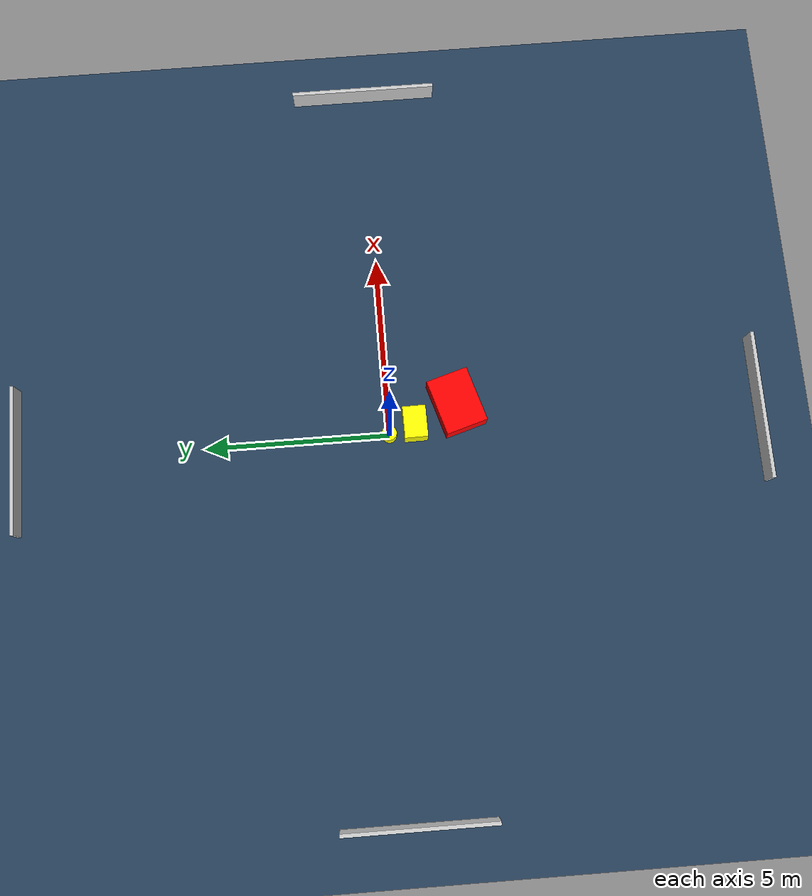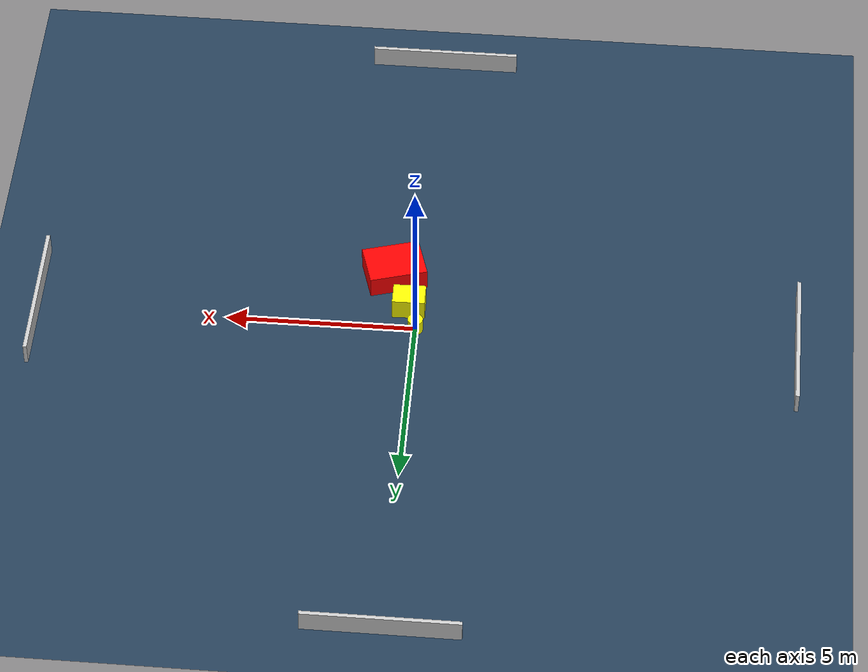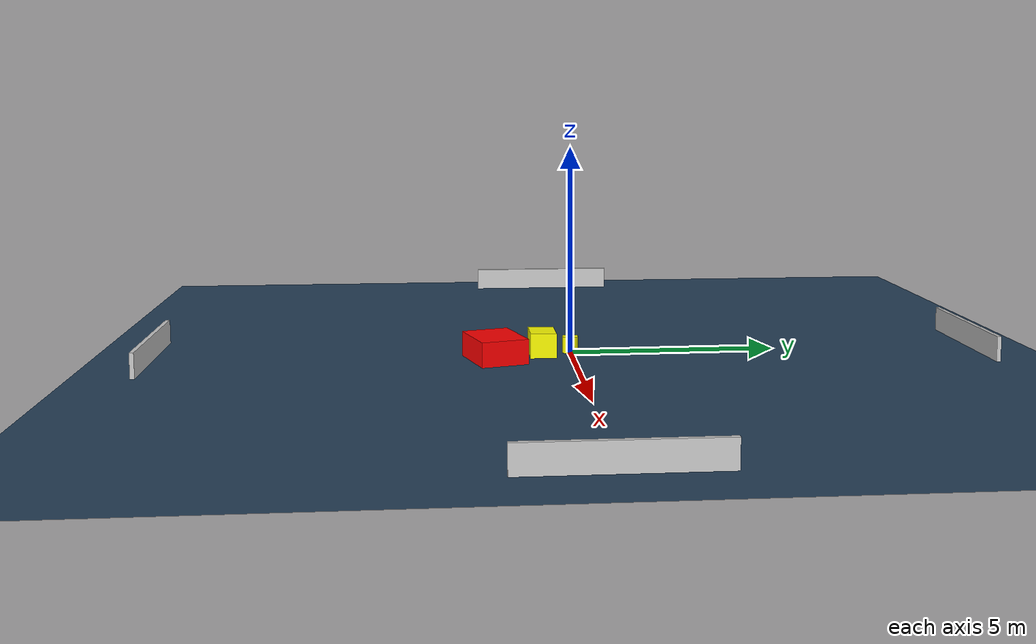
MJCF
<?xml version="1.0" ?>
<mujoco model="generated_environment">
  <option timestep="0.01" integrator="RK4" cone="elliptic"/>
  <default>
    <geom density="1"/>
  </default>
  <asset>
    <texture builtin="gradient" height="3072" name="skybox" rgb1="0.3 0.5 0.7" rgb2="0 0 0" type="skybox" width="512"/>
    <texture builtin="checker" height="300" name="groundplane" rgb1="0.2 0.3 0.4" rgb2="0.1 0.2 0.3" type="2d" width="300"/>
    <material name="groundplane" reflectance="0.2" texrepeat="5 5" texture="groundplane"/>
  </asset>
  <worldbody>
    <light dir="0 0 -1" directional="true" pos="0 0 1.5"/>
    <geom condim="3" friction="0.5 0.005 0.001" material="groundplane" name="floor" pos="0 0 0" size="0 0 0.05" type="plane"/>
    <body name="walls">
      <geom name="wall_1" condim="4" pos="-10.0 0.0 0.3" rgba="0.800000011920929 0.800000011920929 0.800000011920929 1.0" size="0.05 2.0 0.3" type="box"/>
      <geom name="wall_2" condim="4" pos="10.0 0.0 0.3" rgba="0.800000011920929 0.800000011920929 0.800000011920929 1.0" size="0.05 2.0 0.3" type="box"/>
      <geom name="wall_3" condim="4" pos="0.0 -10.0 0.3" rgba="0.800000011920929 0.800000011920929 0.800000011920929 1.0" size="2.0 0.05 0.3" type="box"/>
      <geom name="wall_4" condim="4" pos="0.0 10.0 0.3" rgba="0.800000011920929 0.800000011920929 0.800000011920929 1.0" size="2.0 0.05 0.3" type="box"/>
    </body>
    <body name="robot">
      <joint name="joint_x" type="slide" pos="0 0 0" axis="1 0 0"/>
      <joint name="joint_y" type="slide" pos="0 0 0" axis="0 1 0"/>
      <geom name="robot" type="cylinder" pos="0.0 0.0 0.2" size="0.2 0.2 0.0" mass="5.0" friction="1.0 0.005 0.0001" condim="4" rgba="1.0 1.0 0.0 1.0"/>
    </body>
    <body name="obstacle_1_movable">
      <geom name="obstacle_1_movable" condim="4" pos="0.22326067737009833 -0.7050352831309558 0.3" euler="0 0 180.84879533546388" friction="0.0 0.005 0.001" rgba="1.0 1.0 0.0 1.0" size="0.429442906835514 0.3119418881971229 0.3" type="box" mass="0.1"/>
      <joint type="free"/>
    </body>
    <body name="obstacle_2_static">
      <geom name="obstacle_2_static" condim="4" pos="0.7090018505439727 -1.8633756112089863 0.3" euler="0 0 196.68529438935593" friction="0.0 0.005 0.001" rgba="1.0 0.0 0.0 1.0" size="0.7655117983745661 0.5741001962570382 0.3" type="box"/>
    </body>
  </worldbody>
  <actuator>
    <motor name="actuator_x" joint="joint_x" gear="1" ctrlrange="-1 1"/>
    <motor name="actuator_y" joint="joint_y" gear="1" ctrlrange="-1 1"/>
  </actuator>
</mujoco>
